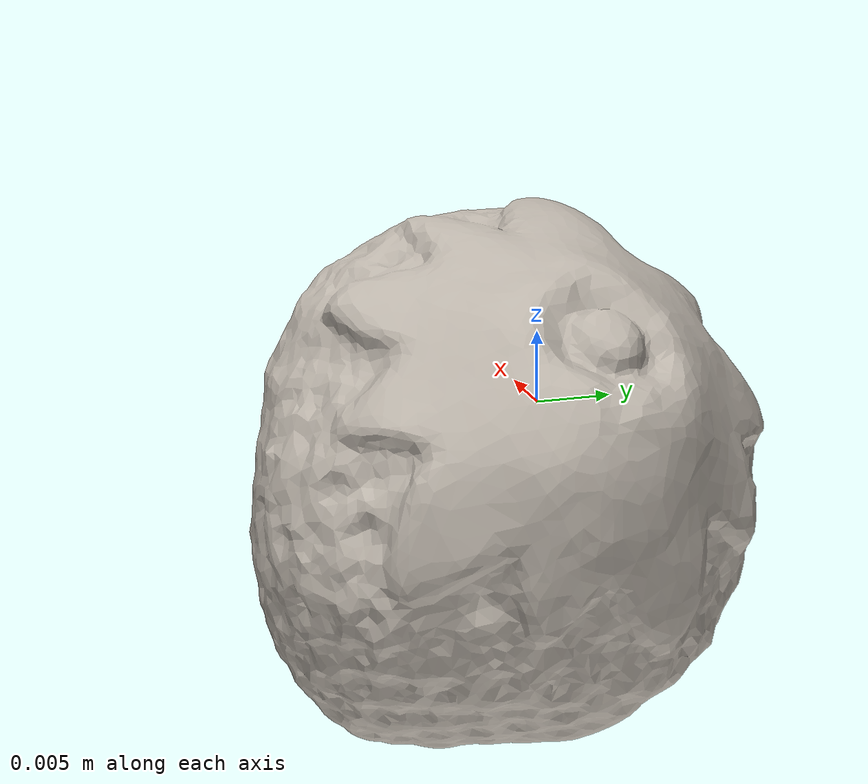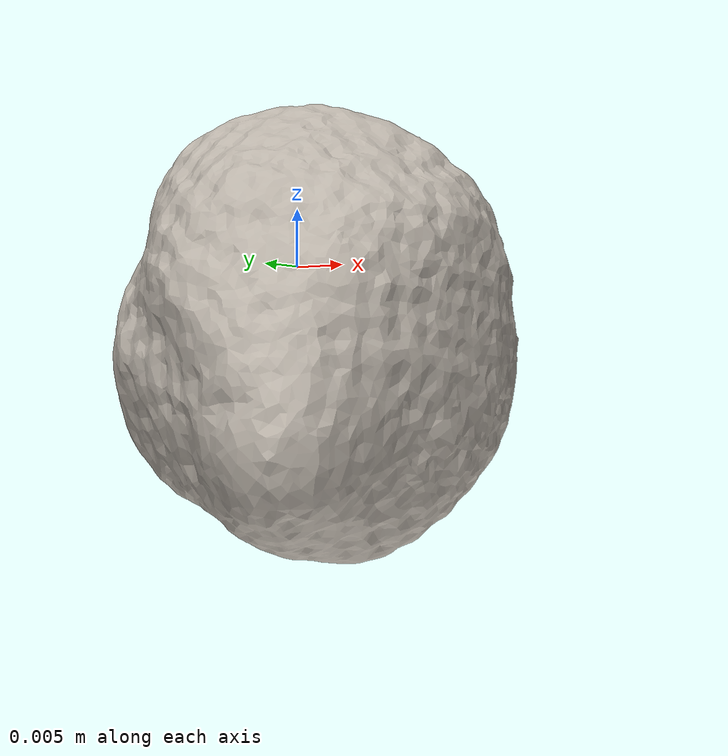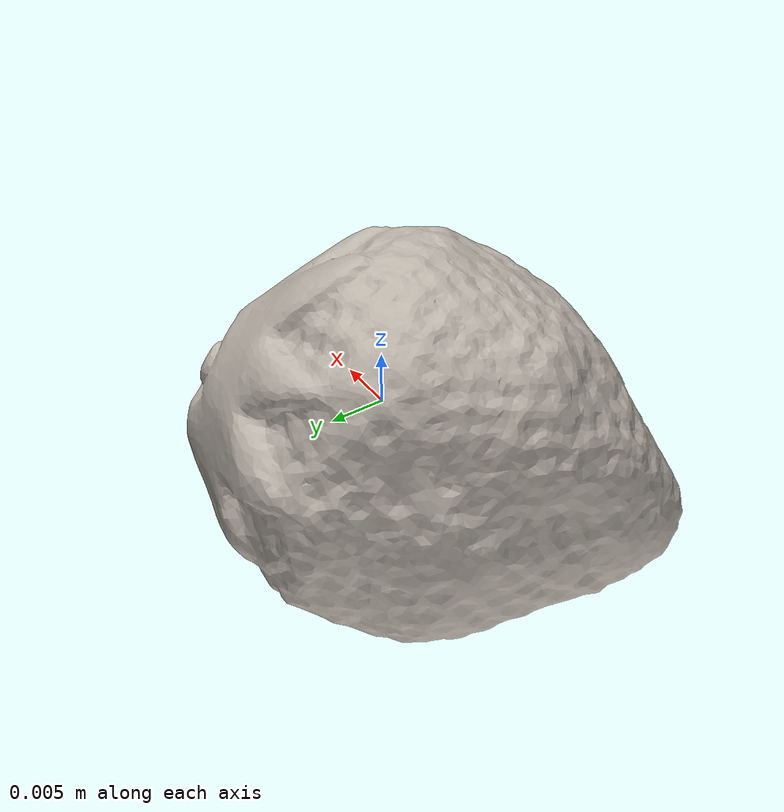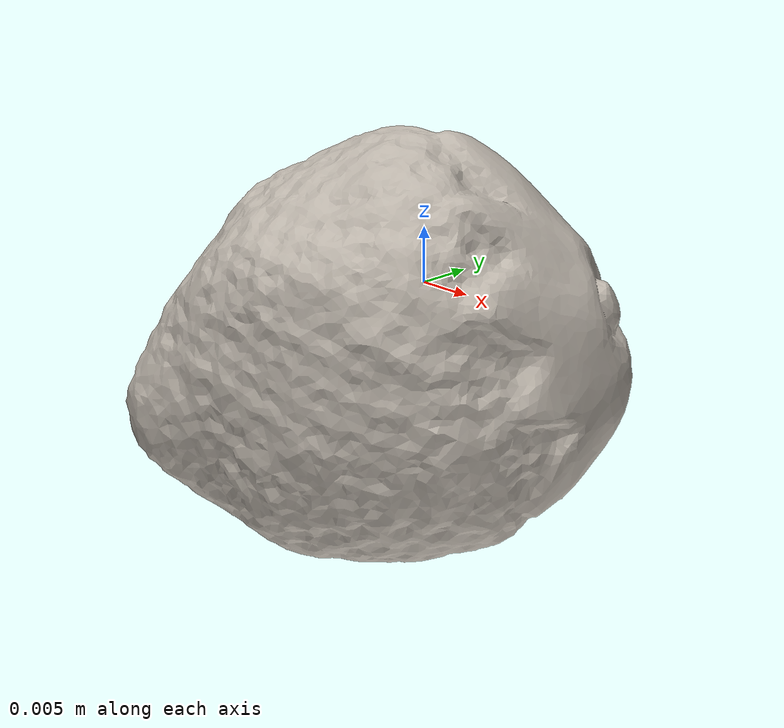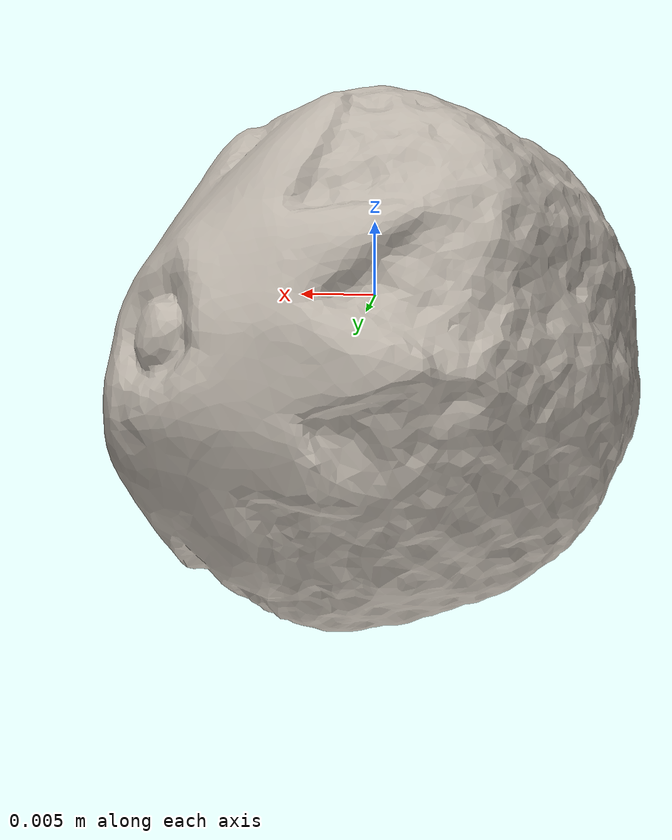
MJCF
<mujoco model="bread">
  <asset>
    <mesh file="nontextured.stl" name="obj_mesh" scale="0.8 0.8 0.8"/>
    <texture file="../../../../../textures/bread.png" type="2d" name="tex-bread" />
    <material name="bread" reflectance="0.7" texrepeat="15 15" texture="tex-bread" texuniform="true"/>
  </asset>
  <worldbody>
    <body>
      <body name="collision">
        <geom pos="0.0008629999999999992 -0.015777000000000003 -0.022620499999999998" mesh="obj_mesh" type="mesh" solimp="0.998 0.998 0.001" solref="0.001 1" density="50" friction="0.95 0.3 0.1"  material="bread" group="1" condim="4"/>
      </body>
      <body name="visual">
        <geom pos="0.0008629999999999992 -0.015777000000000003 -0.022620499999999998" mesh="obj_mesh" type="mesh" material="bread"  conaffinity="0" contype="0"  group="0" mass="0.0001"/>
        <geom pos="0.0008629999999999992 -0.015777000000000003 -0.022620499999999998" mesh="obj_mesh" type="mesh" material="bread"  conaffinity="0" contype="0"  group="1" mass="0.0001"/>
      </body>
      <site rgba="0 0 0 0" size="0.005" pos="0 0 -0.0228375" name="bottom_site"/>
      <site rgba="0 0 0 0" size="0.005" pos="0 0 0.0228375" name="top_site"/>
      <site rgba="0 0 0 0" size="0.005" pos="0.022612 0.022643 0.0228375" name="horizontal_radius_site"/>
    </body>
  </worldbody>
</mujoco>
